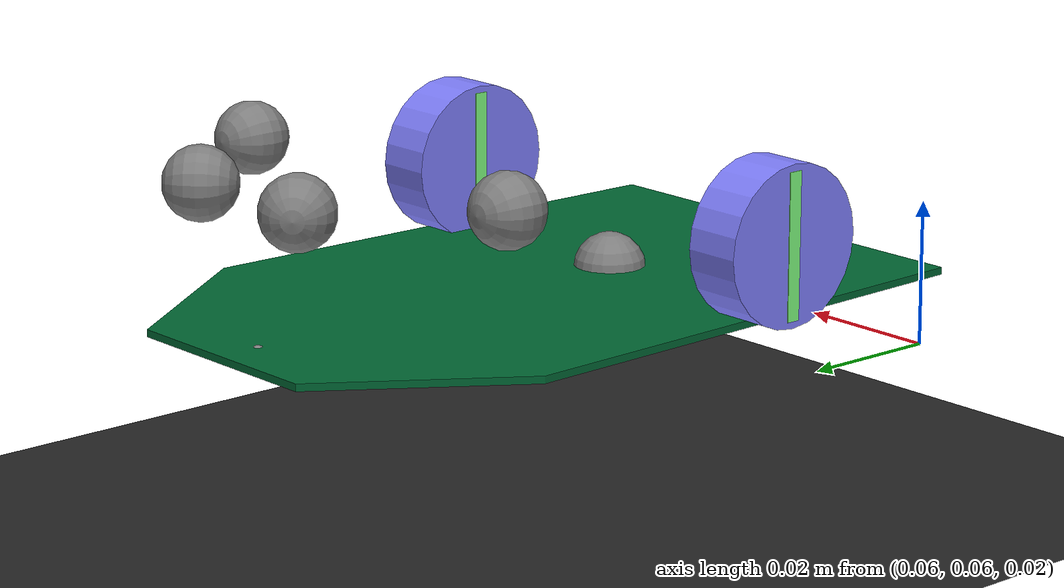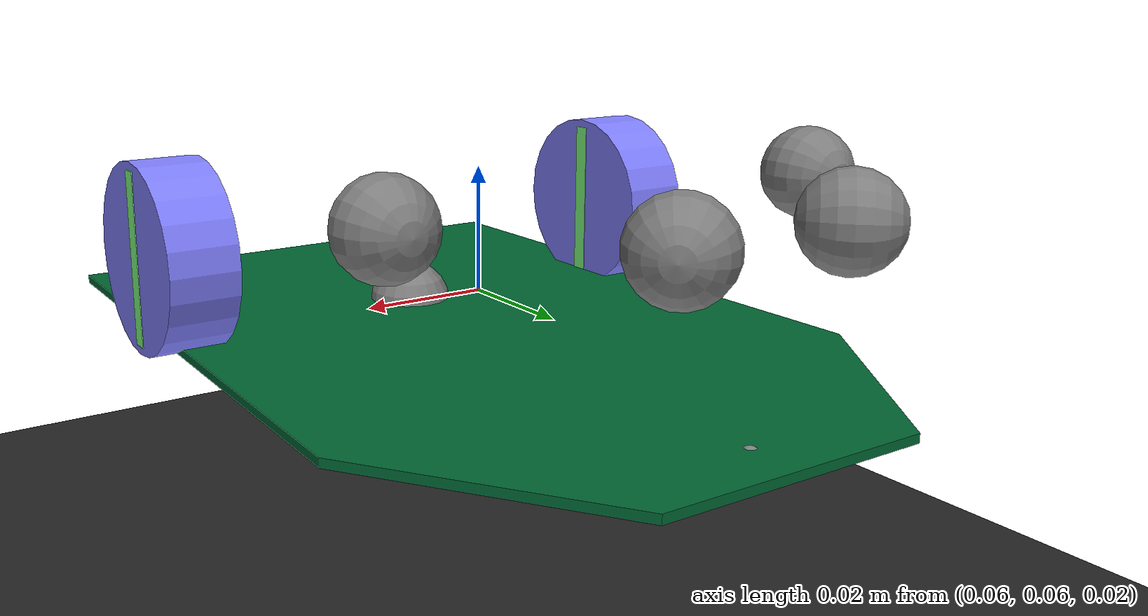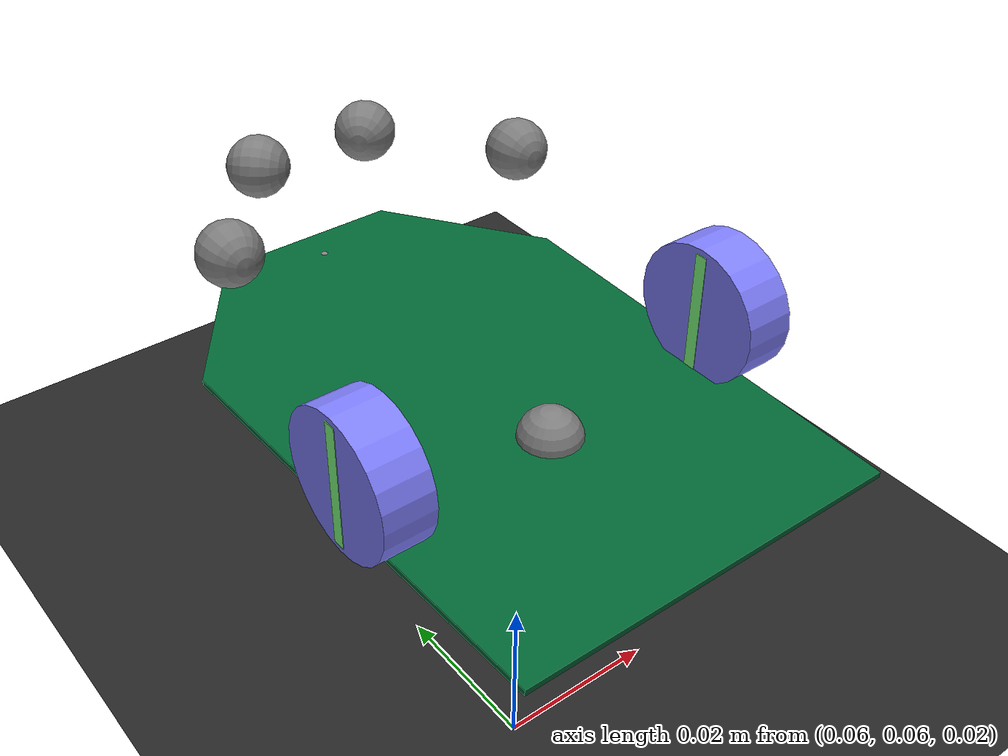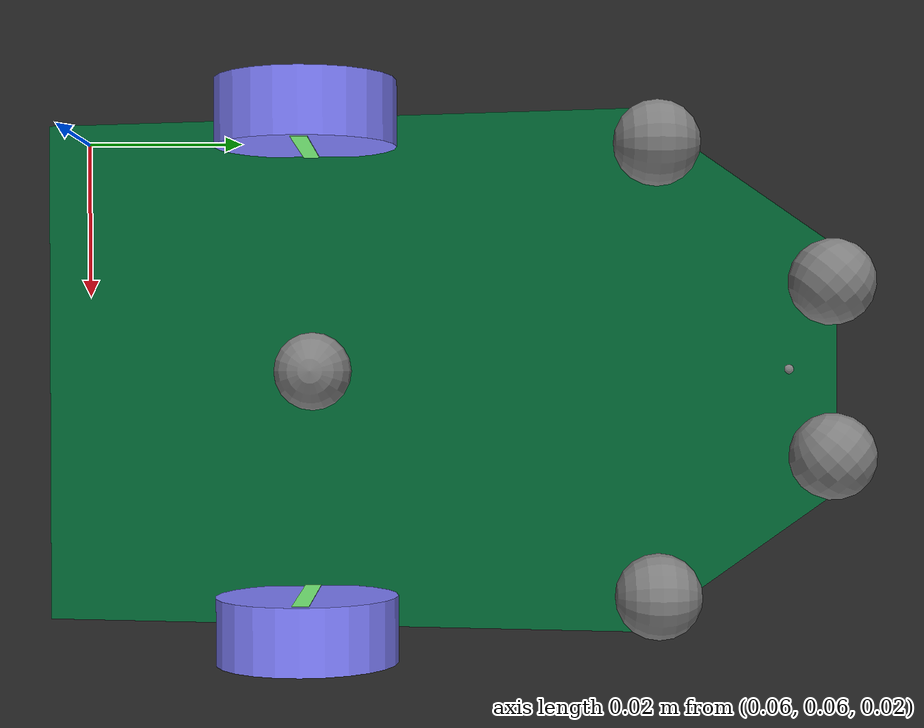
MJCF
<mujoco>
  <option timestep="0.0005" integrator="implicitfast" cone="elliptic"/>

  <extension>
    <plugin plugin="mujoco.ros2">
      <instance name="ros2_plugin">
        <config key="ros_namespace" value="mujoco/"/>
        <config key="topic_queue_size" value="1"/>
        <config key="topic_reliability" value="reliable"/>
      </instance>
    </plugin>
  </extension>

  <asset>
    <texture name="grid" type="2d" builtin="checker" width="512" height="512" rgb1=".1 .1 .1" rgb2=".2 .2 .2"/>
    <material name="grid" texture="grid" texrepeat="5.5555555555 5.5555555555" texuniform="true" reflectance=".2"/>

    <mesh name="base" scale="0.001 0.001 0.001"
        vertex=" 31.0 -33.0 -0.5
                 33.0  41.0 -0.5
                 15.5  66.0 -0.5

                -31.0 -33.0 -0.5
                -33.0  41.0 -0.5
                -15.5  66.0 -0.5

                 31.0 -33.0  0.5
                 33.0  41.0  0.5
                 15.5  66.0  0.5

                -31.0 -33.0  0.5
                -33.0  41.0  0.5
                -15.5  66.0  0.5
    "/>
  </asset>

  <default>
    <default class="wheel">
      <joint type="hinge" frictionloss="0.000645"/>
      <geom type="cylinder" size=".011 .004" rgba=".5 .5 1 1" condim="6" friction="0.95 0.004 0.001" priority="1"/>
      <site type="box" rgba=".5 1 .5 1" size="0.01 0.001 0.0041"/>
    </default>
    <default class="dc_motor">
        <general biastype="affine" gainprm="0.0106 0 0" biasprm="0 0 -0.0000115" gear="10"/>
    </default>
  </default>

  <worldbody>
    <geom name="floor" type="plane" size="0 0 .01" pos="0 0 0" material="grid"/>
    <light name="ambient_light" pos="0 0 3" dir="0 0 -1" directional="true" castshadow="false"/>

    <body name="micras" pos="0.09 0.09 .03">
      <freejoint/>

      <camera name="overhead_camera" mode="track" pos="0 0 0.5" euler="0 0 0" fovy="60"/>
      <camera name="side_tracking_camera" pos="-0.4 -0.4 0.643" mode="track" xyaxes="0.70 -0.70 -0.000 0.471 0.481 0.739"/>
      <camera name="robot_pov" mode="fixed" pos="0 0.04 0.03" euler="90 0 0" fovy="80"/>

      <site name="imu"/>
      <site name="lidar_0" pos="-0.026 0.041 0.02" zaxis=" 0 1 0"/>
      <site name="lidar_1" pos="-0.01  0.061 0.02" zaxis="-1 1 0"/>
      <site name="lidar_2" pos=" 0.01  0.061 0.02" zaxis=" 1 1 0"/>
      <site name="lidar_3" pos=" 0.026 0.041 0.02" zaxis=" 0 1 0"/>

      <geom name="base" type="mesh" mesh="base" mass="0.08" rgba="0.0 0.4 0.2 1" contype="1" conaffinity="1"/>
      <geom name="front wheel" pos="0.0 0.06 -0.0003" type="sphere" size=".001" friction="0.05" priority="1"/>

      <body name="left_wheel" pos="-0.031 0.0 0.01" zaxis="-1 0 0">
        <joint name="left_wheel" class="wheel"/>
        <geom name="left_wheel" class="wheel"/>
        <site class="wheel"/>
      </body>
      <body name="right_wheel" pos="0.031 0.0 0.01" zaxis="-1 0 0">
        <joint name="right_wheel" class="wheel"/>
        <geom name="right_wheel" class="wheel"/>
        <site class="wheel"/>
      </body>
    </body>
  </worldbody>

  <actuator>
    <general name="left_motor" class="dc_motor" joint="left_wheel"/>
    <general name="right_motor" class="dc_motor" joint="right_wheel"/>
  </actuator>

  <sensor>
    <jointactuatorfrc name="left_torque"  joint="left_wheel"/>
    <jointactuatorfrc name="right_torque" joint="right_wheel"/>

    <gyro name="gyro" site="imu"/>
    <accelerometer name="accelerometer" site="imu"/>

    <jointpos name="left_encoder" joint="left_wheel"/>
    <jointpos name="right_encoder" joint="right_wheel"/>

    <rangefinder name="lidar_0" site="lidar_0"/>
    <rangefinder name="lidar_1" site="lidar_1"/>
    <rangefinder name="lidar_2" site="lidar_2"/>
    <rangefinder name="lidar_3" site="lidar_3"/>
  </sensor>
</mujoco>
